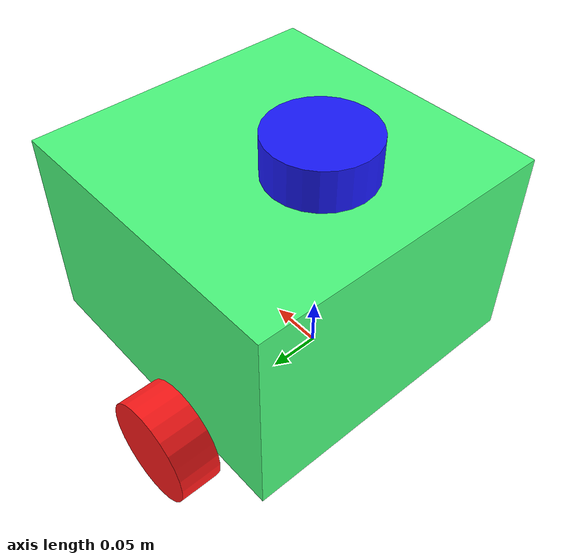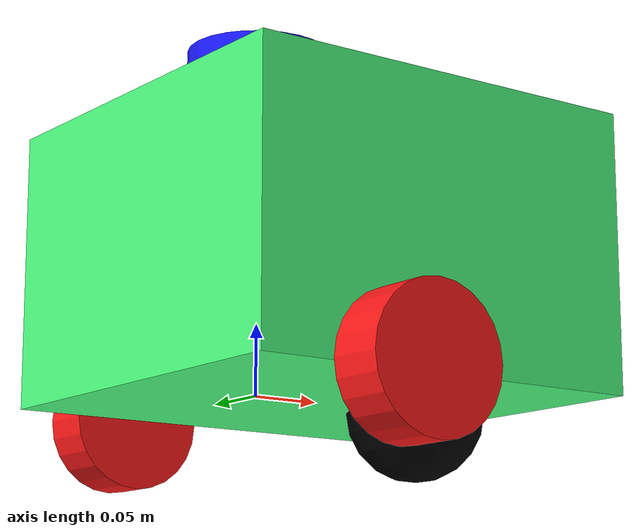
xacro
<?xml version="1.0"?>
<robot xmlns:xacro="http://www.ros.org/wiki/xacro"  name="robot">

    <xacro:arg name="use_ros2_control" default="true"/>
    <xacro:include filename="robot_core.xacro"/>
    <xacro:if value="$(arg use_ros2_control)">
        <xacro:include filename="ros2_control.xacro"/>
    </xacro:if>
    <xacro:unless value="$(arg use_ros2_control)">
        <xacro:include filename="gazebo_control.xacro"/>
    </xacro:unless>
    <xacro:include filename="lidar.xacro"/>
    <xacro:include filename="camera.xacro"/>

</robot>

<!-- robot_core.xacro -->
<robot xmlns:xacro="http://www.ros.org/wiki/xacro" >

   <xacro:include filename="inertial_macros.xacro"/>
    <material name = "lime">
        <color rgba = "0.3 1 0.5 1" />
    </material>
    <material name = "black">
        <color rgba = "0 0 0 1" />
    </material>
    <material name = "blue">
        <color rgba = "0.1 0.1 1 1" />
    </material>
    <material name = "red">
        <color rgba = "1 0.1 0.1 1" />
    </material>

    <!-- BASE LINK -->

    <link name="base_link">

    </link>

    <!-- BASE_FOOTPRINT LINK -->

    <joint name="base_footprint_joint" type="fixed">
        <parent link="base_link"/>
        <child link="base_footprint"/>
        <origin xyz="0 0 0" rpy="0 0 0"/>
    </joint>

    <link name="base_footprint">
    </link>

    <!-- CHASIS LINK -->

    <joint name="chasis_joint" type="fixed">
        <parent link="base_link"/>
        <child link="chasis"/>
        <origin xyz="-0.1 0 0"/>
    </joint>

    <link name="chasis">
        <visual>
            <origin xyz="0.15 0 0.1"/>
            <geometry>
                <!-- size is in metres  -->
                <box size="0.3 0.3 0.2"/>
            </geometry>
            <material name="lime"/>
        </visual>

        <collision>
            <origin xyz="0.15 0 0.1"/>
            <geometry>
                <!-- size is in metres  -->
                <box size="0.3 0.3 0.2"/>
            </geometry>
        </collision>
        <xacro:inertial_box mass="0.5" x="0.3" y="0.3" z="0.2">
            <origin xyz="0.15 0 0.1" rpy="0 0 0"/>
        </xacro:inertial_box>

    </link>
    <gazebo reference="chasis">
        <material>Gazebo/Green</material>
    </gazebo>

    <!-- LEFT WHEEL LINK -->

    <joint name="left_wheel_joint" type="continuous">
        <parent link="base_link"/>
        <child link="left_wheel"/>
        <origin xyz="0 0.175 0" rpy ="-${pi/2} 0 0"/>
        <axis xyz="0 0 1"/>
    </joint>

    <link name="left_wheel">
        <visual>
            <geometry>
                <cylinder radius="0.05" length="0.04"/>
            </geometry>
            <material name="red"/>
        </visual>

        <collision>
            <geometry>
                <sphere radius="0.05"/>
            </geometry>
        </collision>
        <xacro:inertial_cylinder mass="0.01" length="0.04" radius="0.05">
            <origin xyz="0 0 0" rpy="0 0 0"/>
        </xacro:inertial_cylinder>

    </link>
    <gazebo reference="left_wheel">
        <material>Gazebo/Red</material>
    </gazebo>

    <!-- RIGHT WHEEL LINK -->

    <joint name="right_wheel_joint" type="continuous">
        <parent link="base_link"/>
        <child link="right_wheel"/>
        <origin xyz="0 -0.175 0" rpy ="${pi/2} 0 0"/>
        <axis xyz="0 0 -1"/>
    </joint>

    <link name="right_wheel">
        <visual>
            <geometry>
                <cylinder radius="0.05" length="0.04"/>
            </geometry>
            <material name="red"/>
        </visual>

        <collision>
            <geometry>
                <sphere radius="0.05"/>
            </geometry>
        </collision>
        <xacro:inertial_cylinder mass="0.01" length="0.04" radius="0.05">
            <origin xyz="0 0 0" rpy="0 0 0"/>
        </xacro:inertial_cylinder>
    </link>
    <gazebo reference="right_wheel">
        <material>Gazebo/Red</material>
    </gazebo>

    <!-- CASTER WHEEL LINK -->

    <joint name="caster_wheel_joint" type="fixed">
        <parent link="chasis"/>
        <child link="caster_wheel"/>
        <origin xyz="0.24 0 0"/>
    </joint>

    <link name="caster_wheel">
        <visual>
            <geometry>
                <sphere radius="0.05"/>
            </geometry>
            <material name="black"/>
        </visual>

        <collision>
            <geometry>
                <sphere radius="0.05"/>
            </geometry>
        </collision>
        <xacro:inertial_sphere mass="0.1" radius="0.05">
            <origin xyz="0 0 0" rpy="0 0 0"/>
        </xacro:inertial_sphere>
    </link>

    <gazebo reference="caster_wheel">
        <material>Gazebo/Black</material>
        <mu1 value="0.001"/>
        <mu2 value="0.001"/>
    </gazebo>

</robot>

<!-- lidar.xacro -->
<robot xmlns:xacro="http://www.ros.org/wiki/xacro" >

    <joint name="lidar_joint" type="fixed">
        <parent link="chasis" />
        <child link="lidar_frame" />
        <origin xyz="0.1 0 0.225" rpy="0 0 0"/>
    </joint>
    <link name="lidar_frame">
        <visual>
            <geometry>
                <cylinder radius="0.05" length="0.04"/>
            </geometry>
            <material name="blue"/>
        </visual>

        <collision>
            <geometry>
                <cylinder radius="0.05" length="0.04"/>
            </geometry>
        </collision>
        <xacro:inertial_cylinder mass="0.01" length="0.04" radius="0.05">
            <origin xyz="0 0 0" rpy="0 0 0"/>
        </xacro:inertial_cylinder>
    </link>

    <gazebo reference="lidar_frame">
        <material>Gazebo/Blue</material>
        <sensor name="lidar" type="ray">
            <pose> 0 0 0 0 0 0</pose>
            <visualize>false</visualize>
            <update_rate>10</update_rate>
            <ray>
                <scan>
                    <horizontal>
                        <samples>360</samples>
                        <resolution>1</resolution>
                        <min_angle>-3.14</min_angle>
                        <max_angle>3.14</max_angle>
                    </horizontal>
                </scan>
                <range>
                    <min>0.3</min>
                    <max>13</max>
                    <resolution>0.01</resolution>
                </range>
            </ray>
            <plugin name="lidar_controller" filename="libgazebo_ros_ray_sensor.so">
                <ros>
                    <argument>~/out:=scan</argument>
                </ros>
                <output_type>sensor_msgs/LaserScan</output_type>
                <frame_name>lidar_frame</frame_name>
            </plugin>
        </sensor>
    </gazebo>
</robot>

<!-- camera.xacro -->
<robot xmlns:xacro="http://www.ros.org/wiki/xacro" >

    <joint name="camera_joint" type="fixed">
        <parent link="chasis" />
        <child link="camera_link" />
        <origin xyz="0.305 0 0.105" rpy="0 0 0"/>
    </joint>
    <link name="camera_link">
        <visual>
            <geometry>
                <!-- Size is in mm -->
                <box size="0.010 0.03 0.03"/>
            </geometry>
            <material name="black"/>
        </visual>

    </link>

    <joint name="camera_optical_joint" type="fixed">
        <parent link="camera_link" />
        <child link="camera_optical_link" />
        <origin xyz="0 0 0" rpy="${-pi/2} 0 ${-pi/2}"/>
    </joint>

    <link name="camera_optical_link"></link>

    <gazebo reference="camera_link">
        <material>Gazebo/Black</material>
        <sensor name="camera" type="camera">
            <pose> 0 0 0 0 0 0</pose>
            <visualize>true</visualize>
            <update_rate>10</update_rate>
            <camera>
                <horizontal_fov>1.089</horizontal_fov>      <!--Field of View value in radians-->
                <image>
                    <format>R8G8B8</format>
                    <width>640</width>
                    <height>480</height>
                </image>
                <clip>
                    <near>0.05</near>   <!-- Can see as close as 50mm-->
                    <far>8.0</far>      <!-- Can see as far as 8m-->
                </clip>
            </camera>
            <plugin name="camera_controller" filename="libgazebo_ros_camera.so">
                <frame_name>camera_optical_link</frame_name>
            </plugin>
        </sensor>
    </gazebo>
</robot>
